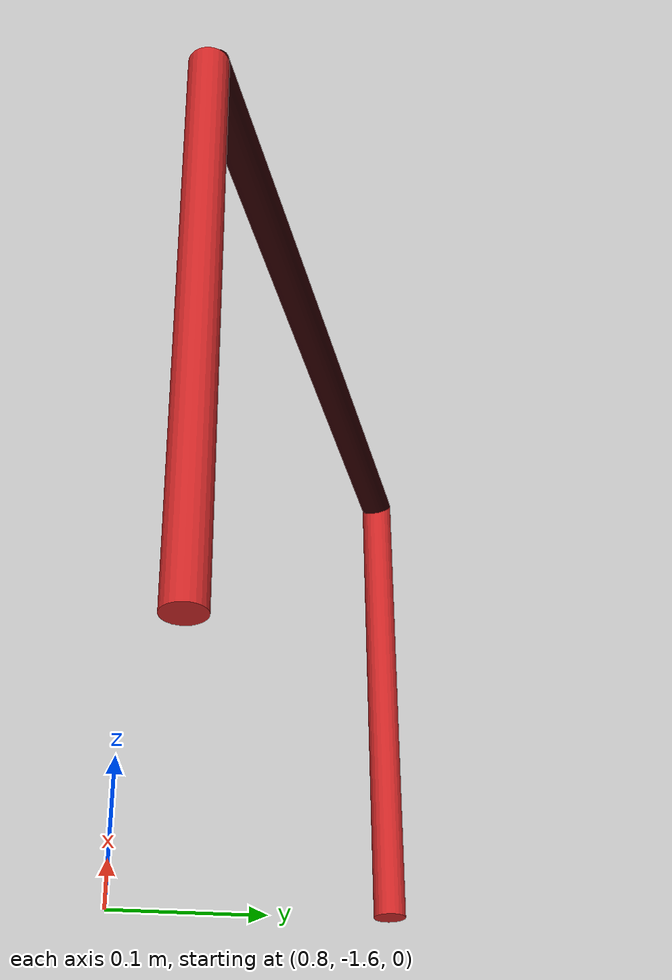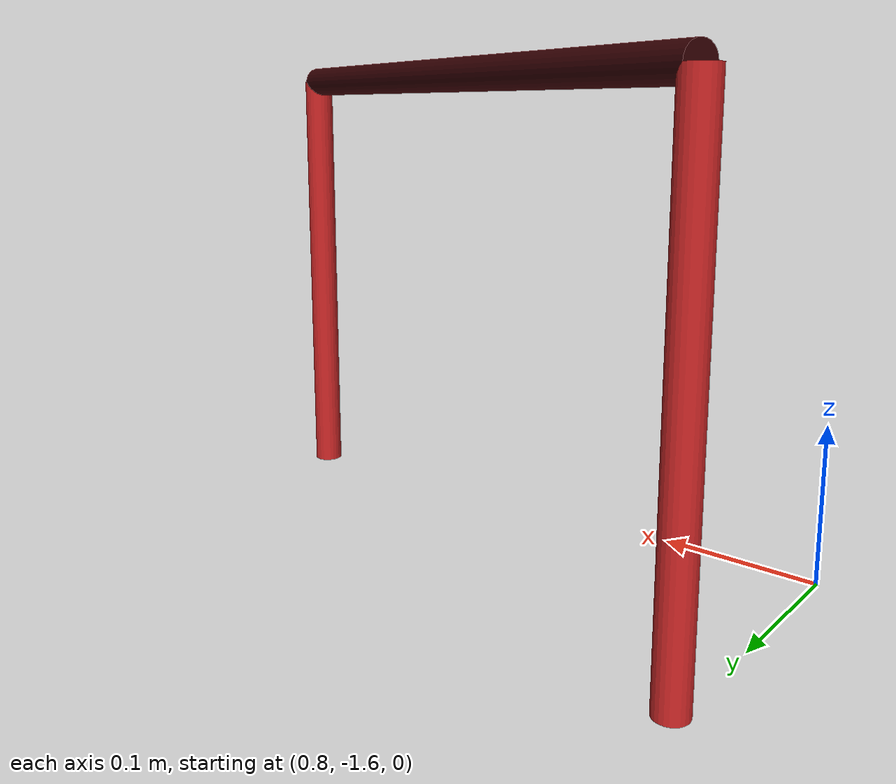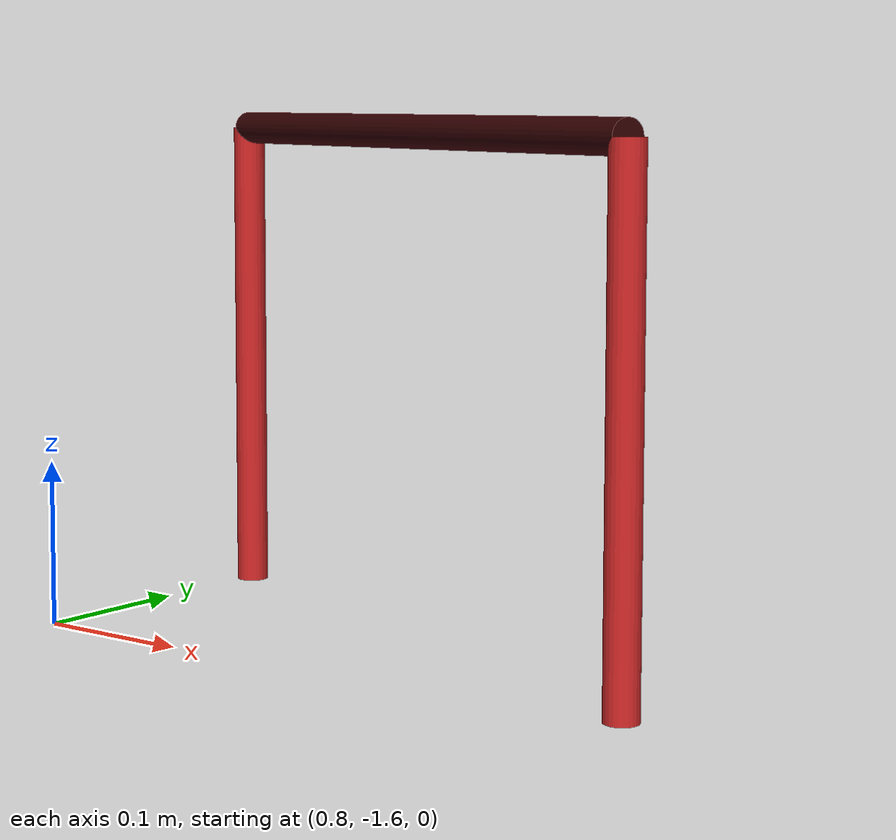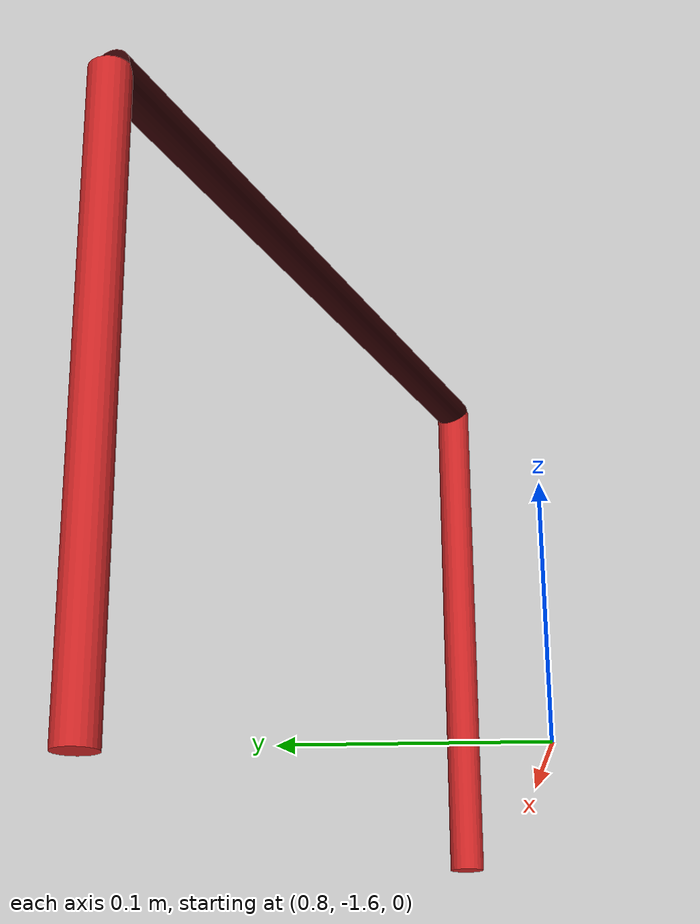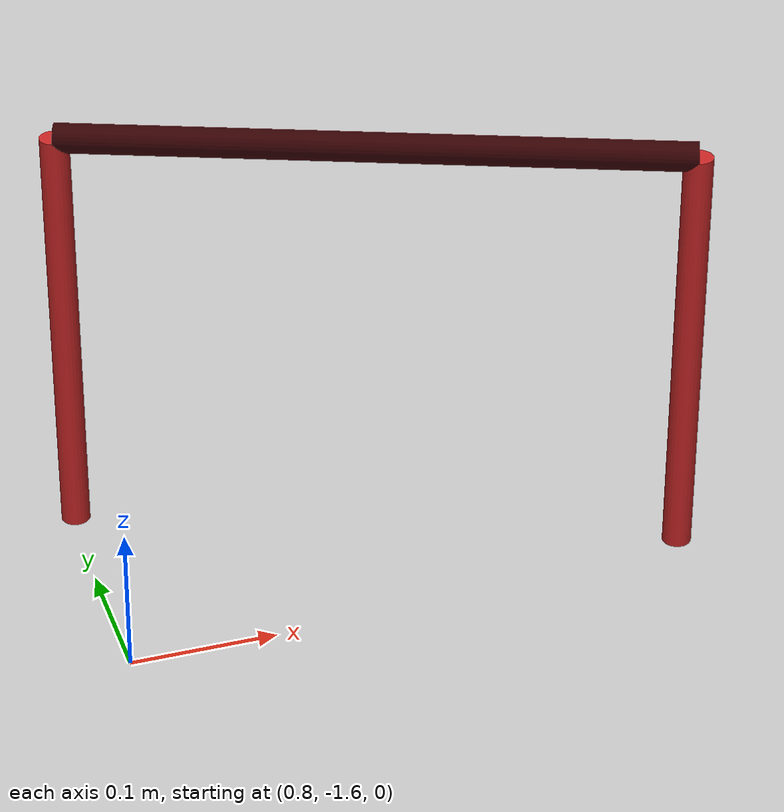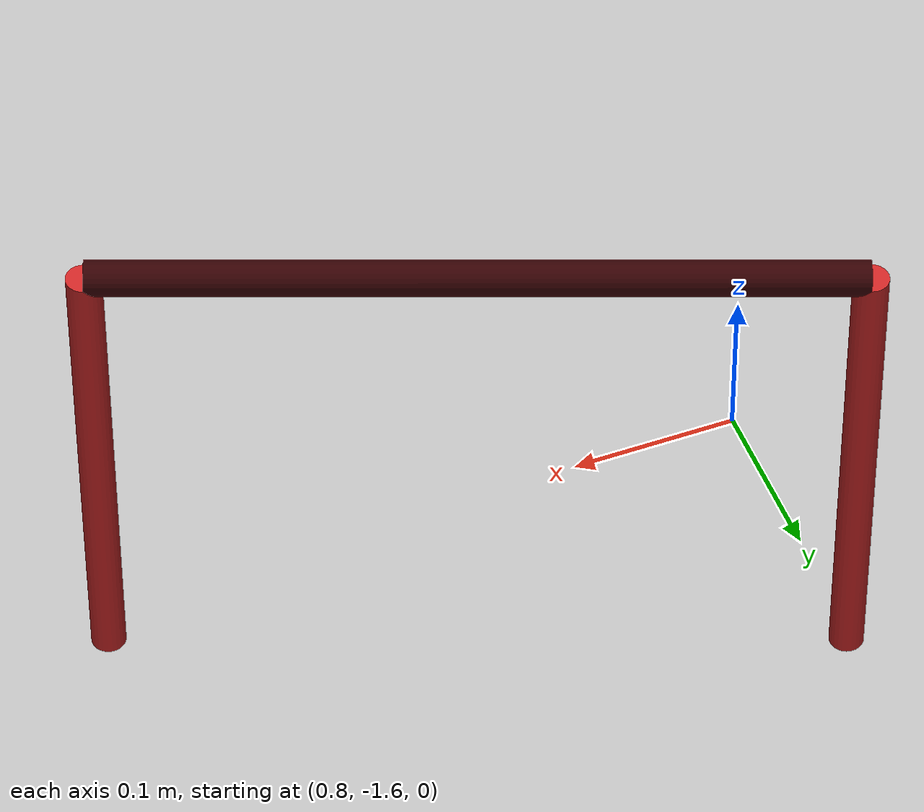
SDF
<?xml version="1.0" ?>
<sdf version="1.5">
  <model name="robocup_3d_goal">
   <pose>1 -1.5 0 0 0 1.2 </pose>
    <static>true</static>
    <link name="left_post">
      <pose>0 -0.21 0.15 0 0 0</pose>
      <collision name="collision">
        <geometry>
          <cylinder>
            <radius>0.01</radius>
            <length>0.3</length>
          </cylinder>
        </geometry>
      </collision>
      <visual name="visual">
        <geometry>
          <cylinder>
             <radius>0.01</radius>
            <length>0.3</length>
          </cylinder>
        </geometry>
          <material>
          <lighting>1</lighting>
          <script>
            <uri>file://media/materials/scripts/gazebo.material</uri>
            <name>Gazebo/Red</name>
          </script>
          <shader type='pixel'>
            <normal_map>__default__</normal_map>
          </shader>
          <ambient>0.2 0. 0.01 1</ambient>
          <diffuse>0.2 0. 0.01 1</diffuse>
          <specular>0.2 0. 0.01 1</specular>
          <emissive>0.2 0. 0.01 1</emissive>
        </material>
      </visual>
    </link>

    <link name="right_post">
      <pose>0 0.21 0.15 0 0 0</pose>
      <collision name="collision">
        <geometry>
          <cylinder>
            <radius>0.01</radius>
            <length>0.3</length>
          </cylinder>
        </geometry>
      </collision>
      <visual name="visual">
        <geometry>
          <cylinder>
            <radius>0.01</radius>
            <length>0.3</length>
          </cylinder>
        </geometry>
          <material>
          <lighting>1</lighting>
          <script>
            <uri>file://media/materials/scripts/gazebo.material</uri>
            <name>Gazebo/Red</name>
          </script>
          <shader type='pixel'>
            <normal_map>__default__</normal_map>
          </shader>
          <ambient>0.2 0. 0.01 1</ambient>
          <diffuse>0.2 0. 0.01 1</diffuse>
          <specular>0.2 0. 0.01 1</specular>
          <emissive>0.2 0. 0.01 1</emissive>
        </material>
      </visual>
    </link>

    <link name="crossbar">
    <pose>0 0 0.3 1.5708 0 0</pose>
      <collision name="collision">
        <geometry>
          <cylinder>
            <radius>0.01</radius>
            <length>0.42</length>
          </cylinder>
        </geometry>
      </collision>
      <visual name="visual">
        <geometry>
          <cylinder>
            <radius>0.01</radius>
            <length>0.42</length>
          </cylinder>
        </geometry>
            <material>
          <lighting>1</lighting>
          <script>
            <uri>file://media/materials/scripts/gazebo.material</uri>
            <name>Gazebo/Grey</name>
          </script>
          <shader type='pixel'>
            <normal_map>__default__</normal_map>
          </shader>
          <ambient>0.2 0. 0.01 1</ambient>
          <diffuse>0.2 0. 0.01 1</diffuse>
          <specular>0.2 0. 0.01 1</specular>
          <emissive>0.2 0. 0.01 1</emissive>
        </material>
      </visual>
    </link>
  </model>
</sdf>
